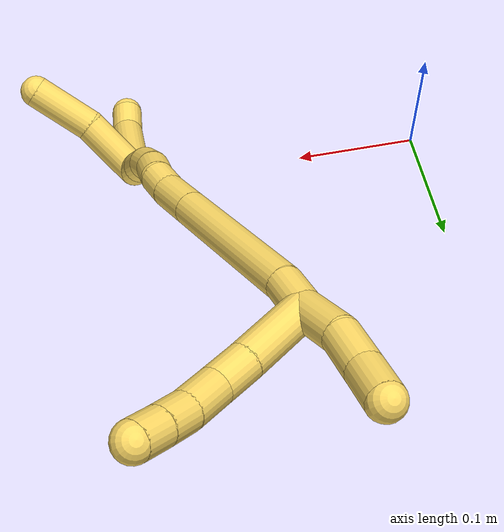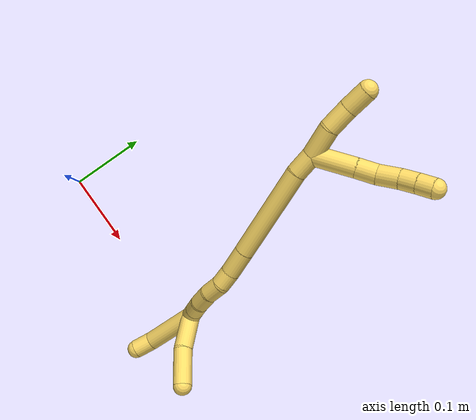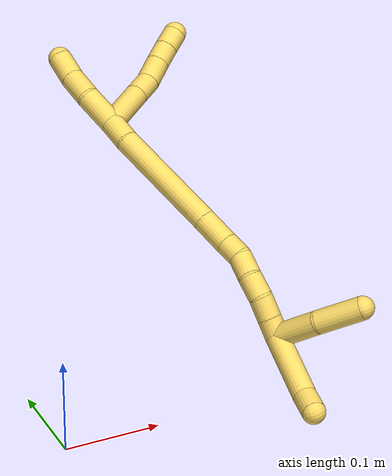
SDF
<sdf version="1.7">
 <world name="default">
  <model name="5">
   <static>0</static>
   <link name="5">
    <collision name="collision-cylinder-e_1_2_8">
     <pose>0.015824 0.020729 0.006732 -1.25679 0.627991 -0.46347</pose>
     <geometry><cylinder><radius>0.0125</radius><length>0.053867</length></cylinder></geometry>
     <surface>
      <friction><ode><mu>1.16</mu><mu2>1.16</mu2><slip1>0</slip1><slip2>0</slip2></ode></friction>
      <contact><ode><kp>1e+06</kp><kd>1</kd><max_vel>0</max_vel><min_depth>0.001</min_depth></ode></contact>
     </surface>
    </collision>
    <visual name="visual-cylinder-e_1_2_8">
     <pose>0.015824 0.020729 0.006732 -1.25679 0.627991 -0.46347</pose>
     <geometry><cylinder><radius>0.0125</radius><length>0.053867</length></cylinder></geometry>
     <material><ambient>1 0.858824 0.4 1</ambient></material>
    </visual>
    <collision name="collision-cylinder-e_2_8_9">
     <pose>0.039443 0.050989 0.016717 -1.24181 0.658673 -0.479535</pose>
     <geometry><cylinder><radius>0.0125</radius><length>0.025471</length></cylinder></geometry>
     <surface>
      <friction><ode><mu>1.16</mu><mu2>1.16</mu2><slip1>0</slip1><slip2>0</slip2></ode></friction>
      <contact><ode><kp>1e+06</kp><kd>1</kd><max_vel>0</max_vel><min_depth>0.001</min_depth></ode></contact>
     </surface>
    </collision>
    <visual name="visual-cylinder-e_2_8_9">
     <pose>0.039443 0.050989 0.016717 -1.24181 0.658673 -0.479535</pose>
     <geometry><cylinder><radius>0.0125</radius><length>0.025471</length></cylinder></geometry>
     <material><ambient>1 0.858824 0.4 1</ambient></material>
    </visual>
    <collision name="collision-cylinder-e_3_9_10">
     <pose>0.05531 0.069971 0.026645 -0.955959 0.609213 -0.322902</pose>
     <geometry><cylinder><radius>0.0125</radius><length>0.028215</length></cylinder></geometry>
     <surface>
      <friction><ode><mu>1.16</mu><mu2>1.16</mu2><slip1>0</slip1><slip2>0</slip2></ode></friction>
      <contact><ode><kp>1e+06</kp><kd>1</kd><max_vel>0</max_vel><min_depth>0.001</min_depth></ode></contact>
     </surface>
    </collision>
    <visual name="visual-cylinder-e_3_9_10">
     <pose>0.05531 0.069971 0.026645 -0.955959 0.609213 -0.322902</pose>
     <geometry><cylinder><radius>0.0125</radius><length>0.028215</length></cylinder></geometry>
     <material><ambient>1 0.858824 0.4 1</ambient></material>
    </visual>
    <collision name="collision-cylinder-e_4_10_11">
     <pose>0.070322 0.085568 0.038874 -0.835837 0.697205 -0.320036</pose>
     <geometry><cylinder><radius>0.0125</radius><length>0.021615</length></cylinder></geometry>
     <surface>
      <friction><ode><mu>1.16</mu><mu2>1.16</mu2><slip1>0</slip1><slip2>0</slip2></ode></friction>
      <contact><ode><kp>1e+06</kp><kd>1</kd><max_vel>0</max_vel><min_depth>0.001</min_depth></ode></contact>
     </surface>
    </collision>
    <visual name="visual-cylinder-e_4_10_11">
     <pose>0.070322 0.085568 0.038874 -0.835837 0.697205 -0.320036</pose>
     <geometry><cylinder><radius>0.0125</radius><length>0.021615</length></cylinder></geometry>
     <material><ambient>1 0.858824 0.4 1</ambient></material>
    </visual>
    <collision name="collision-cylinder-e_5_11_6">
     <pose>0.084193 0.097513 0.04961 -0.84172 0.728115 -0.337861</pose>
     <geometry><cylinder><radius>0.0125</radius><length>0.020833</length></cylinder></geometry>
     <surface>
      <friction><ode><mu>1.16</mu><mu2>1.16</mu2><slip1>0</slip1><slip2>0</slip2></ode></friction>
      <contact><ode><kp>1e+06</kp><kd>1</kd><max_vel>0</max_vel><min_depth>0.001</min_depth></ode></contact>
     </surface>
    </collision>
    <visual name="visual-cylinder-e_5_11_6">
     <pose>0.084193 0.097513 0.04961 -0.84172 0.728115 -0.337861</pose>
     <geometry><cylinder><radius>0.0125</radius><length>0.020833</length></cylinder></geometry>
     <material><ambient>1 0.858824 0.4 1</ambient></material>
    </visual>
    <collision name="collision-cylinder-e_1_2_12">
     <pose>-0.007733 0.008506 0.015838 -0.492872 -0.406201 0.103516</pose>
     <geometry><cylinder><radius>0.0125</radius><length>0.03914</length></cylinder></geometry>
     <surface>
      <friction><ode><mu>1.16</mu><mu2>1.16</mu2><slip1>0</slip1><slip2>0</slip2></ode></friction>
      <contact><ode><kp>1e+06</kp><kd>1</kd><max_vel>0</max_vel><min_depth>0.001</min_depth></ode></contact>
     </surface>
    </collision>
    <visual name="visual-cylinder-e_1_2_12">
     <pose>-0.007733 0.008506 0.015838 -0.492872 -0.406201 0.103516</pose>
     <geometry><cylinder><radius>0.0125</radius><length>0.03914</length></cylinder></geometry>
     <material><ambient>1 0.858824 0.4 1</ambient></material>
    </visual>
    <collision name="collision-cylinder-e_2_12_13">
     <pose>-0.020515 0.027088 0.042461 -0.751411 -0.329694 0.131048</pose>
     <geometry><cylinder><radius>0.0125</radius><length>0.031198</length></cylinder></geometry>
     <surface>
      <friction><ode><mu>1.16</mu><mu2>1.16</mu2><slip1>0</slip1><slip2>0</slip2></ode></friction>
      <contact><ode><kp>1e+06</kp><kd>1</kd><max_vel>0</max_vel><min_depth>0.001</min_depth></ode></contact>
     </surface>
    </collision>
    <visual name="visual-cylinder-e_2_12_13">
     <pose>-0.020515 0.027088 0.042461 -0.751411 -0.329694 0.131048</pose>
     <geometry><cylinder><radius>0.0125</radius><length>0.031198</length></cylinder></geometry>
     <material><ambient>1 0.858824 0.4 1</ambient></material>
    </visual>
    <collision name="collision-cylinder-e_3_13_5">
     <pose>-0.028889 0.046121 0.064589 -0.668414 -0.226033 0.078781</pose>
     <geometry><cylinder><radius>0.0125</radius><length>0.029662</length></cylinder></geometry>
     <surface>
      <friction><ode><mu>1.16</mu><mu2>1.16</mu2><slip1>0</slip1><slip2>0</slip2></ode></friction>
      <contact><ode><kp>1e+06</kp><kd>1</kd><max_vel>0</max_vel><min_depth>0.001</min_depth></ode></contact>
     </surface>
    </collision>
    <visual name="visual-cylinder-e_3_13_5">
     <pose>-0.028889 0.046121 0.064589 -0.668414 -0.226033 0.078781</pose>
     <geometry><cylinder><radius>0.0125</radius><length>0.029662</length></cylinder></geometry>
     <material><ambient>1 0.858824 0.4 1</ambient></material>
    </visual>
    <collision name="collision-cylinder-e_1_2_14">
     <pose>0.004759 -0.008578 -0.010363 2.45019 0.339997 0.889514</pose>
     <geometry><cylinder><radius>0.0125</radius><length>0.028539</length></cylinder></geometry>
     <surface>
      <friction><ode><mu>1.16</mu><mu2>1.16</mu2><slip1>0</slip1><slip2>0</slip2></ode></friction>
      <contact><ode><kp>1e+06</kp><kd>1</kd><max_vel>0</max_vel><min_depth>0.001</min_depth></ode></contact>
     </surface>
    </collision>
    <visual name="visual-cylinder-e_1_2_14">
     <pose>0.004759 -0.008578 -0.010363 2.45019 0.339997 0.889514</pose>
     <geometry><cylinder><radius>0.0125</radius><length>0.028539</length></cylinder></geometry>
     <material><ambient>1 0.858824 0.4 1</ambient></material>
    </visual>
    <collision name="collision-cylinder-e_2_14_15">
     <pose>0.035066 -0.046824 -0.068488 2.58574 0.426499 1.29842</pose>
     <geometry><cylinder><radius>0.0125</radius><length>0.123518</length></cylinder></geometry>
     <surface>
      <friction><ode><mu>1.16</mu><mu2>1.16</mu2><slip1>0</slip1><slip2>0</slip2></ode></friction>
      <contact><ode><kp>1e+06</kp><kd>1</kd><max_vel>0</max_vel><min_depth>0.001</min_depth></ode></contact>
     </surface>
    </collision>
    <visual name="visual-cylinder-e_2_14_15">
     <pose>0.035066 -0.046824 -0.068488 2.58574 0.426499 1.29842</pose>
     <geometry><cylinder><radius>0.0125</radius><length>0.123518</length></cylinder></geometry>
     <material><ambient>1 0.858824 0.4 1</ambient></material>
    </visual>
    <collision name="collision-cylinder-e_3_15_16">
     <pose>0.067696 -0.084885 -0.129942 2.59174 0.415272 1.283</pose>
     <geometry><cylinder><radius>0.0125</radius><length>0.035101</length></cylinder></geometry>
     <surface>
      <friction><ode><mu>1.16</mu><mu2>1.16</mu2><slip1>0</slip1><slip2>0</slip2></ode></friction>
      <contact><ode><kp>1e+06</kp><kd>1</kd><max_vel>0</max_vel><min_depth>0.001</min_depth></ode></contact>
     </surface>
    </collision>
    <visual name="visual-cylinder-e_3_15_16">
     <pose>0.067696 -0.084885 -0.129942 2.59174 0.415272 1.283</pose>
     <geometry><cylinder><radius>0.0125</radius><length>0.035101</length></cylinder></geometry>
     <material><ambient>1 0.858824 0.4 1</ambient></material>
    </visual>
    <collision name="collision-cylinder-e_4_16_17">
     <pose>0.079168 -0.099513 -0.15127 2.45683 0.419113 1.076</pose>
     <geometry><cylinder><radius>0.0125</radius><length>0.021587</length></cylinder></geometry>
     <surface>
      <friction><ode><mu>1.16</mu><mu2>1.16</mu2><slip1>0</slip1><slip2>0</slip2></ode></friction>
      <contact><ode><kp>1e+06</kp><kd>1</kd><max_vel>0</max_vel><min_depth>0.001</min_depth></ode></contact>
     </surface>
    </collision>
    <visual name="visual-cylinder-e_4_16_17">
     <pose>0.079168 -0.099513 -0.15127 2.45683 0.419113 1.076</pose>
     <geometry><cylinder><radius>0.0125</radius><length>0.021587</length></cylinder></geometry>
     <material><ambient>1 0.858824 0.4 1</ambient></material>
    </visual>
    <collision name="collision-cylinder-e_5_17_18">
     <pose>0.084945 -0.112288 -0.168845 2.55963 0.115853 0.382542</pose>
     <geometry><cylinder><radius>0.0125</radius><length>0.023954</length></cylinder></geometry>
     <surface>
      <friction><ode><mu>1.16</mu><mu2>1.16</mu2><slip1>0</slip1><slip2>0</slip2></ode></friction>
      <contact><ode><kp>1e+06</kp><kd>1</kd><max_vel>0</max_vel><min_depth>0.001</min_depth></ode></contact>
     </surface>
    </collision>
    <visual name="visual-cylinder-e_5_17_18">
     <pose>0.084945 -0.112288 -0.168845 2.55963 0.115853 0.382542</pose>
     <geometry><cylinder><radius>0.0125</radius><length>0.023954</length></cylinder></geometry>
     <material><ambient>1 0.858824 0.4 1</ambient></material>
    </visual>
    <collision name="collision-cylinder-e_6_18_19">
     <pose>0.088204 -0.123355 -0.189957 2.75657 0.154198 0.754654</pose>
     <geometry><cylinder><radius>0.0125</radius><length>0.024401</length></cylinder></geometry>
     <surface>
      <friction><ode><mu>1.16</mu><mu2>1.16</mu2><slip1>0</slip1><slip2>0</slip2></ode></friction>
      <contact><ode><kp>1e+06</kp><kd>1</kd><max_vel>0</max_vel><min_depth>0.001</min_depth></ode></contact>
     </surface>
    </collision>
    <visual name="visual-cylinder-e_6_18_19">
     <pose>0.088204 -0.123355 -0.189957 2.75657 0.154198 0.754654</pose>
     <geometry><cylinder><radius>0.0125</radius><length>0.024401</length></cylinder></geometry>
     <material><ambient>1 0.858824 0.4 1</ambient></material>
    </visual>
    <collision name="collision-cylinder-e_7_19_20">
     <pose>0.090793 -0.129583 -0.212379 2.99162 0.062829 0.792337</pose>
     <geometry><cylinder><radius>0.0125</radius><length>0.022798</length></cylinder></geometry>
     <surface>
      <friction><ode><mu>1.16</mu><mu2>1.16</mu2><slip1>0</slip1><slip2>0</slip2></ode></friction>
      <contact><ode><kp>1e+06</kp><kd>1</kd><max_vel>0</max_vel><min_depth>0.001</min_depth></ode></contact>
     </surface>
    </collision>
    <visual name="visual-cylinder-e_7_19_20">
     <pose>0.090793 -0.129583 -0.212379 2.99162 0.062829 0.792337</pose>
     <geometry><cylinder><radius>0.0125</radius><length>0.022798</length></cylinder></geometry>
     <material><ambient>1 0.858824 0.4 1</ambient></material>
    </visual>
    <collision name="collision-cylinder-e_8_20_1">
     <pose>0.092122 -0.132526 -0.233583 3.01733 0.060988 0.911724</pose>
     <geometry><cylinder><radius>0.0125</radius><length>0.020101</length></cylinder></geometry>
     <surface>
      <friction><ode><mu>1.16</mu><mu2>1.16</mu2><slip1>0</slip1><slip2>0</slip2></ode></friction>
      <contact><ode><kp>1e+06</kp><kd>1</kd><max_vel>0</max_vel><min_depth>0.001</min_depth></ode></contact>
     </surface>
    </collision>
    <visual name="visual-cylinder-e_8_20_1">
     <pose>0.092122 -0.132526 -0.233583 3.01733 0.060988 0.911724</pose>
     <geometry><cylinder><radius>0.0125</radius><length>0.020101</length></cylinder></geometry>
     <material><ambient>1 0.858824 0.4 1</ambient></material>
    </visual>
    <collision name="collision-cylinder-e_1_1_21">
     <pose>0.096629 -0.1584 -0.271237 2.41478 0.104704 0.273847</pose>
     <geometry><cylinder><radius>0.0125</radius><length>0.074542</length></cylinder></geometry>
     <surface>
      <friction><ode><mu>1.16</mu><mu2>1.16</mu2><slip1>0</slip1><slip2>0</slip2></ode></friction>
      <contact><ode><kp>1e+06</kp><kd>1</kd><max_vel>0</max_vel><min_depth>0.001</min_depth></ode></contact>
     </surface>
    </collision>
    <visual name="visual-cylinder-e_1_1_21">
     <pose>0.096629 -0.1584 -0.271237 2.41478 0.104704 0.273847</pose>
     <geometry><cylinder><radius>0.0125</radius><length>0.074542</length></cylinder></geometry>
     <material><ambient>1 0.858824 0.4 1</ambient></material>
    </visual>
    <collision name="collision-cylinder-e_2_21_4">
     <pose>0.102276 -0.193942 -0.305255 2.09566 0.138041 0.238686</pose>
     <geometry><cylinder><radius>0.0125</radius><length>0.025458</length></cylinder></geometry>
     <surface>
      <friction><ode><mu>1.16</mu><mu2>1.16</mu2><slip1>0</slip1><slip2>0</slip2></ode></friction>
      <contact><ode><kp>1e+06</kp><kd>1</kd><max_vel>0</max_vel><min_depth>0.001</min_depth></ode></contact>
     </surface>
    </collision>
    <visual name="visual-cylinder-e_2_21_4">
     <pose>0.102276 -0.193942 -0.305255 2.09566 0.138041 0.238686</pose>
     <geometry><cylinder><radius>0.0125</radius><length>0.025458</length></cylinder></geometry>
     <material><ambient>1 0.858824 0.4 1</ambient></material>
    </visual>
    <collision name="collision-cylinder-e_1_1_22">
     <pose>0.114575 -0.14584 -0.240644 1.33556 1.054 0.860478</pose>
     <geometry><cylinder><radius>0.0125</radius><length>0.050244</length></cylinder></geometry>
     <surface>
      <friction><ode><mu>1.16</mu><mu2>1.16</mu2><slip1>0</slip1><slip2>0</slip2></ode></friction>
      <contact><ode><kp>1e+06</kp><kd>1</kd><max_vel>0</max_vel><min_depth>0.001</min_depth></ode></contact>
     </surface>
    </collision>
    <visual name="visual-cylinder-e_1_1_22">
     <pose>0.114575 -0.14584 -0.240644 1.33556 1.054 0.860478</pose>
     <geometry><cylinder><radius>0.0125</radius><length>0.050244</length></cylinder></geometry>
     <material><ambient>1 0.858824 0.4 1</ambient></material>
    </visual>
    <collision name="collision-cylinder-e_2_22_3">
     <pose>0.1602 -0.165096 -0.236461 1.39311 1.27301 1.10741</pose>
     <geometry><cylinder><radius>0.0125</radius><length>0.049756</length></cylinder></geometry>
     <surface>
      <friction><ode><mu>1.16</mu><mu2>1.16</mu2><slip1>0</slip1><slip2>0</slip2></ode></friction>
      <contact><ode><kp>1e+06</kp><kd>1</kd><max_vel>0</max_vel><min_depth>0.001</min_depth></ode></contact>
     </surface>
    </collision>
    <visual name="visual-cylinder-e_2_22_3">
     <pose>0.1602 -0.165096 -0.236461 1.39311 1.27301 1.10741</pose>
     <geometry><cylinder><radius>0.0125</radius><length>0.049756</length></cylinder></geometry>
     <material><ambient>1 0.858824 0.4 1</ambient></material>
    </visual>
    <collision name="collision-sphere-3">
     <pose>0.183983 -0.17228 -0.235171 0 -0 0</pose>
     <geometry><sphere><radius>0.0125</radius></sphere></geometry>
     <surface>
      <friction><ode><mu>1.16</mu><mu2>1.16</mu2><slip1>0</slip1><slip2>0</slip2></ode></friction>
      <contact><ode><kp>1e+06</kp><kd>1</kd><max_vel>0</max_vel><min_depth>0.001</min_depth></ode></contact>
     </surface>
    </collision>
    <visual name="visual-sphere-3">
     <pose>0.183983 -0.17228 -0.235171 0 -0 0</pose>
     <geometry><sphere><radius>0.0125</radius></sphere></geometry>
     <material><ambient>1 0.858824 0.4 1</ambient></material>
    </visual>
    <collision name="collision-sphere-22">
     <pose>0.136416 -0.157911 -0.237751 0 -0 0</pose>
     <geometry><sphere><radius>0.0125</radius></sphere></geometry>
     <surface>
      <friction><ode><mu>1.16</mu><mu2>1.16</mu2><slip1>0</slip1><slip2>0</slip2></ode></friction>
      <contact><ode><kp>1e+06</kp><kd>1</kd><max_vel>0</max_vel><min_depth>0.001</min_depth></ode></contact>
     </surface>
    </collision>
    <visual name="visual-sphere-22">
     <pose>0.136416 -0.157911 -0.237751 0 -0 0</pose>
     <geometry><sphere><radius>0.0125</radius></sphere></geometry>
     <material><ambient>1 0.858824 0.4 1</ambient></material>
    </visual>
    <collision name="collision-sphere-4">
     <pose>0.104028 -0.204853 -0.311573 0 -0 0</pose>
     <geometry><sphere><radius>0.0125</radius></sphere></geometry>
     <surface>
      <friction><ode><mu>1.16</mu><mu2>1.16</mu2><slip1>0</slip1><slip2>0</slip2></ode></friction>
      <contact><ode><kp>1e+06</kp><kd>1</kd><max_vel>0</max_vel><min_depth>0.001</min_depth></ode></contact>
     </surface>
    </collision>
    <visual name="visual-sphere-4">
     <pose>0.104028 -0.204853 -0.311573 0 -0 0</pose>
     <geometry><sphere><radius>0.0125</radius></sphere></geometry>
     <material><ambient>1 0.858824 0.4 1</ambient></material>
    </visual>
    <collision name="collision-sphere-21">
     <pose>0.100525 -0.183031 -0.298937 0 -0 0</pose>
     <geometry><sphere><radius>0.0125</radius></sphere></geometry>
     <surface>
      <friction><ode><mu>1.16</mu><mu2>1.16</mu2><slip1>0</slip1><slip2>0</slip2></ode></friction>
      <contact><ode><kp>1e+06</kp><kd>1</kd><max_vel>0</max_vel><min_depth>0.001</min_depth></ode></contact>
     </surface>
    </collision>
    <visual name="visual-sphere-21">
     <pose>0.100525 -0.183031 -0.298937 0 -0 0</pose>
     <geometry><sphere><radius>0.0125</radius></sphere></geometry>
     <material><ambient>1 0.858824 0.4 1</ambient></material>
    </visual>
    <collision name="collision-sphere-1">
     <pose>0.092734 -0.13377 -0.243537 0 -0 0</pose>
     <geometry><sphere><radius>0.0125</radius></sphere></geometry>
     <surface>
      <friction><ode><mu>1.16</mu><mu2>1.16</mu2><slip1>0</slip1><slip2>0</slip2></ode></friction>
      <contact><ode><kp>1e+06</kp><kd>1</kd><max_vel>0</max_vel><min_depth>0.001</min_depth></ode></contact>
     </surface>
    </collision>
    <visual name="visual-sphere-1">
     <pose>0.092734 -0.13377 -0.243537 0 -0 0</pose>
     <geometry><sphere><radius>0.0125</radius></sphere></geometry>
     <material><ambient>1 0.858824 0.4 1</ambient></material>
    </visual>
    <collision name="collision-sphere-6">
     <pose>0.091125 0.103312 0.054789 0 -0 0</pose>
     <geometry><sphere><radius>0.0125</radius></sphere></geometry>
     <surface>
      <friction><ode><mu>1.16</mu><mu2>1.16</mu2><slip1>0</slip1><slip2>0</slip2></ode></friction>
      <contact><ode><kp>1e+06</kp><kd>1</kd><max_vel>0</max_vel><min_depth>0.001</min_depth></ode></contact>
     </surface>
    </collision>
    <visual name="visual-sphere-6">
     <pose>0.091125 0.103312 0.054789 0 -0 0</pose>
     <geometry><sphere><radius>0.0125</radius></sphere></geometry>
     <material><ambient>1 0.858824 0.4 1</ambient></material>
    </visual>
    <collision name="collision-sphere-11">
     <pose>0.077261 0.091715 0.04443 0 -0 0</pose>
     <geometry><sphere><radius>0.0125</radius></sphere></geometry>
     <surface>
      <friction><ode><mu>1.16</mu><mu2>1.16</mu2><slip1>0</slip1><slip2>0</slip2></ode></friction>
      <contact><ode><kp>1e+06</kp><kd>1</kd><max_vel>0</max_vel><min_depth>0.001</min_depth></ode></contact>
     </surface>
    </collision>
    <visual name="visual-sphere-11">
     <pose>0.077261 0.091715 0.04443 0 -0 0</pose>
     <geometry><sphere><radius>0.0125</radius></sphere></geometry>
     <material><ambient>1 0.858824 0.4 1</ambient></material>
    </visual>
    <collision name="collision-sphere-10">
     <pose>0.063383 0.079422 0.033318 0 -0 0</pose>
     <geometry><sphere><radius>0.0125</radius></sphere></geometry>
     <surface>
      <friction><ode><mu>1.16</mu><mu2>1.16</mu2><slip1>0</slip1><slip2>0</slip2></ode></friction>
      <contact><ode><kp>1e+06</kp><kd>1</kd><max_vel>0</max_vel><min_depth>0.001</min_depth></ode></contact>
     </surface>
    </collision>
    <visual name="visual-sphere-10">
     <pose>0.063383 0.079422 0.033318 0 -0 0</pose>
     <geometry><sphere><radius>0.0125</radius></sphere></geometry>
     <material><ambient>1 0.858824 0.4 1</ambient></material>
    </visual>
    <collision name="collision-sphere-9">
     <pose>0.047237 0.06052 0.019971 0 -0 0</pose>
     <geometry><sphere><radius>0.0125</radius></sphere></geometry>
     <surface>
      <friction><ode><mu>1.16</mu><mu2>1.16</mu2><slip1>0</slip1><slip2>0</slip2></ode></friction>
      <contact><ode><kp>1e+06</kp><kd>1</kd><max_vel>0</max_vel><min_depth>0.001</min_depth></ode></contact>
     </surface>
    </collision>
    <visual name="visual-sphere-9">
     <pose>0.047237 0.06052 0.019971 0 -0 0</pose>
     <geometry><sphere><radius>0.0125</radius></sphere></geometry>
     <material><ambient>1 0.858824 0.4 1</ambient></material>
    </visual>
    <collision name="collision-sphere-2">
     <geometry><sphere><radius>0.0125</radius></sphere></geometry>
     <surface>
      <friction><ode><mu>1.16</mu><mu2>1.16</mu2><slip1>0</slip1><slip2>0</slip2></ode></friction>
      <contact><ode><kp>1e+06</kp><kd>1</kd><max_vel>0</max_vel><min_depth>0.001</min_depth></ode></contact>
     </surface>
    </collision>
    <visual name="visual-sphere-2">
     <geometry><sphere><radius>0.0125</radius></sphere></geometry>
     <material><ambient>1 0.858824 0.4 1</ambient></material>
    </visual>
    <collision name="collision-sphere-19">
     <pose>0.090077 -0.127883 -0.20113 0 -0 0</pose>
     <geometry><sphere><radius>0.0125</radius></sphere></geometry>
     <surface>
      <friction><ode><mu>1.16</mu><mu2>1.16</mu2><slip1>0</slip1><slip2>0</slip2></ode></friction>
      <contact><ode><kp>1e+06</kp><kd>1</kd><max_vel>0</max_vel><min_depth>0.001</min_depth></ode></contact>
     </surface>
    </collision>
    <visual name="visual-sphere-19">
     <pose>0.090077 -0.127883 -0.20113 0 -0 0</pose>
     <geometry><sphere><radius>0.0125</radius></sphere></geometry>
     <material><ambient>1 0.858824 0.4 1</ambient></material>
    </visual>
    <collision name="collision-sphere-8">
     <pose>0.031648 0.041458 0.013464 0 -0 0</pose>
     <geometry><sphere><radius>0.0125</radius></sphere></geometry>
     <surface>
      <friction><ode><mu>1.16</mu><mu2>1.16</mu2><slip1>0</slip1><slip2>0</slip2></ode></friction>
      <contact><ode><kp>1e+06</kp><kd>1</kd><max_vel>0</max_vel><min_depth>0.001</min_depth></ode></contact>
     </surface>
    </collision>
    <visual name="visual-sphere-8">
     <pose>0.031648 0.041458 0.013464 0 -0 0</pose>
     <geometry><sphere><radius>0.0125</radius></sphere></geometry>
     <material><ambient>1 0.858824 0.4 1</ambient></material>
    </visual>
    <collision name="collision-sphere-12">
     <pose>-0.015465 0.017013 0.031676 0 -0 0</pose>
     <geometry><sphere><radius>0.0125</radius></sphere></geometry>
     <surface>
      <friction><ode><mu>1.16</mu><mu2>1.16</mu2><slip1>0</slip1><slip2>0</slip2></ode></friction>
      <contact><ode><kp>1e+06</kp><kd>1</kd><max_vel>0</max_vel><min_depth>0.001</min_depth></ode></contact>
     </surface>
    </collision>
    <visual name="visual-sphere-12">
     <pose>-0.015465 0.017013 0.031676 0 -0 0</pose>
     <geometry><sphere><radius>0.0125</radius></sphere></geometry>
     <material><ambient>1 0.858824 0.4 1</ambient></material>
    </visual>
    <collision name="collision-sphere-13">
     <pose>-0.025566 0.037163 0.053245 0 -0 0</pose>
     <geometry><sphere><radius>0.0125</radius></sphere></geometry>
     <surface>
      <friction><ode><mu>1.16</mu><mu2>1.16</mu2><slip1>0</slip1><slip2>0</slip2></ode></friction>
      <contact><ode><kp>1e+06</kp><kd>1</kd><max_vel>0</max_vel><min_depth>0.001</min_depth></ode></contact>
     </surface>
    </collision>
    <visual name="visual-sphere-13">
     <pose>-0.025566 0.037163 0.053245 0 -0 0</pose>
     <geometry><sphere><radius>0.0125</radius></sphere></geometry>
     <material><ambient>1 0.858824 0.4 1</ambient></material>
    </visual>
    <collision name="collision-sphere-5">
     <pose>-0.032213 0.055078 0.075932 0 -0 0</pose>
     <geometry><sphere><radius>0.0125</radius></sphere></geometry>
     <surface>
      <friction><ode><mu>1.16</mu><mu2>1.16</mu2><slip1>0</slip1><slip2>0</slip2></ode></friction>
      <contact><ode><kp>1e+06</kp><kd>1</kd><max_vel>0</max_vel><min_depth>0.001</min_depth></ode></contact>
     </surface>
    </collision>
    <visual name="visual-sphere-5">
     <pose>-0.032213 0.055078 0.075932 0 -0 0</pose>
     <geometry><sphere><radius>0.0125</radius></sphere></geometry>
     <material><ambient>1 0.858824 0.4 1</ambient></material>
    </visual>
    <collision name="collision-sphere-14">
     <pose>0.009517 -0.017155 -0.020726 0 -0 0</pose>
     <geometry><sphere><radius>0.0125</radius></sphere></geometry>
     <surface>
      <friction><ode><mu>1.16</mu><mu2>1.16</mu2><slip1>0</slip1><slip2>0</slip2></ode></friction>
      <contact><ode><kp>1e+06</kp><kd>1</kd><max_vel>0</max_vel><min_depth>0.001</min_depth></ode></contact>
     </surface>
    </collision>
    <visual name="visual-sphere-14">
     <pose>0.009517 -0.017155 -0.020726 0 -0 0</pose>
     <geometry><sphere><radius>0.0125</radius></sphere></geometry>
     <material><ambient>1 0.858824 0.4 1</ambient></material>
    </visual>
    <collision name="collision-sphere-15">
     <pose>0.060615 -0.076494 -0.11625 0 -0 0</pose>
     <geometry><sphere><radius>0.0125</radius></sphere></geometry>
     <surface>
      <friction><ode><mu>1.16</mu><mu2>1.16</mu2><slip1>0</slip1><slip2>0</slip2></ode></friction>
      <contact><ode><kp>1e+06</kp><kd>1</kd><max_vel>0</max_vel><min_depth>0.001</min_depth></ode></contact>
     </surface>
    </collision>
    <visual name="visual-sphere-15">
     <pose>0.060615 -0.076494 -0.11625 0 -0 0</pose>
     <geometry><sphere><radius>0.0125</radius></sphere></geometry>
     <material><ambient>1 0.858824 0.4 1</ambient></material>
    </visual>
    <collision name="collision-sphere-16">
     <pose>0.074776 -0.093277 -0.143633 0 -0 0</pose>
     <geometry><sphere><radius>0.0125</radius></sphere></geometry>
     <surface>
      <friction><ode><mu>1.16</mu><mu2>1.16</mu2><slip1>0</slip1><slip2>0</slip2></ode></friction>
      <contact><ode><kp>1e+06</kp><kd>1</kd><max_vel>0</max_vel><min_depth>0.001</min_depth></ode></contact>
     </surface>
    </collision>
    <visual name="visual-sphere-16">
     <pose>0.074776 -0.093277 -0.143633 0 -0 0</pose>
     <geometry><sphere><radius>0.0125</radius></sphere></geometry>
     <material><ambient>1 0.858824 0.4 1</ambient></material>
    </visual>
    <collision name="collision-sphere-17">
     <pose>0.083561 -0.105749 -0.158907 0 -0 0</pose>
     <geometry><sphere><radius>0.0125</radius></sphere></geometry>
     <surface>
      <friction><ode><mu>1.16</mu><mu2>1.16</mu2><slip1>0</slip1><slip2>0</slip2></ode></friction>
      <contact><ode><kp>1e+06</kp><kd>1</kd><max_vel>0</max_vel><min_depth>0.001</min_depth></ode></contact>
     </surface>
    </collision>
    <visual name="visual-sphere-17">
     <pose>0.083561 -0.105749 -0.158907 0 -0 0</pose>
     <geometry><sphere><radius>0.0125</radius></sphere></geometry>
     <material><ambient>1 0.858824 0.4 1</ambient></material>
    </visual>
    <collision name="collision-sphere-18">
     <pose>0.08633 -0.118827 -0.178784 0 -0 0</pose>
     <geometry><sphere><radius>0.0125</radius></sphere></geometry>
     <surface>
      <friction><ode><mu>1.16</mu><mu2>1.16</mu2><slip1>0</slip1><slip2>0</slip2></ode></friction>
      <contact><ode><kp>1e+06</kp><kd>1</kd><max_vel>0</max_vel><min_depth>0.001</min_depth></ode></contact>
     </surface>
    </collision>
    <visual name="visual-sphere-18">
     <pose>0.08633 -0.118827 -0.178784 0 -0 0</pose>
     <geometry><sphere><radius>0.0125</radius></sphere></geometry>
     <material><ambient>1 0.858824 0.4 1</ambient></material>
    </visual>
    <collision name="collision-sphere-20">
     <pose>0.091509 -0.131283 -0.223628 0 -0 0</pose>
     <geometry><sphere><radius>0.0125</radius></sphere></geometry>
     <surface>
      <friction><ode><mu>1.16</mu><mu2>1.16</mu2><slip1>0</slip1><slip2>0</slip2></ode></friction>
      <contact><ode><kp>1e+06</kp><kd>1</kd><max_vel>0</max_vel><min_depth>0.001</min_depth></ode></contact>
     </surface>
    </collision>
    <visual name="visual-sphere-20">
     <pose>0.091509 -0.131283 -0.223628 0 -0 0</pose>
     <geometry><sphere><radius>0.0125</radius></sphere></geometry>
     <material><ambient>1 0.858824 0.4 1</ambient></material>
    </visual>
    <inertial>
     <pose>0.060116 -0.058593 -0.105827 0 -0 0</pose>
     <mass>0.75</mass>
     <inertia>
      <ixx>0.000309</ixx>
      <ixy>0</ixy>
      <ixz>0</ixz>
      <iyy>0.00017</iyy>
      <iyz>0</iyz>
      <izz>-2.4e-05</izz>
     </inertia>
    </inertial>
   </link>
   <pose>0.167983 0.264663 0.203067 -0.327294 -0.309789 -0.30709</pose>
  </model>
 </world>
</sdf>
